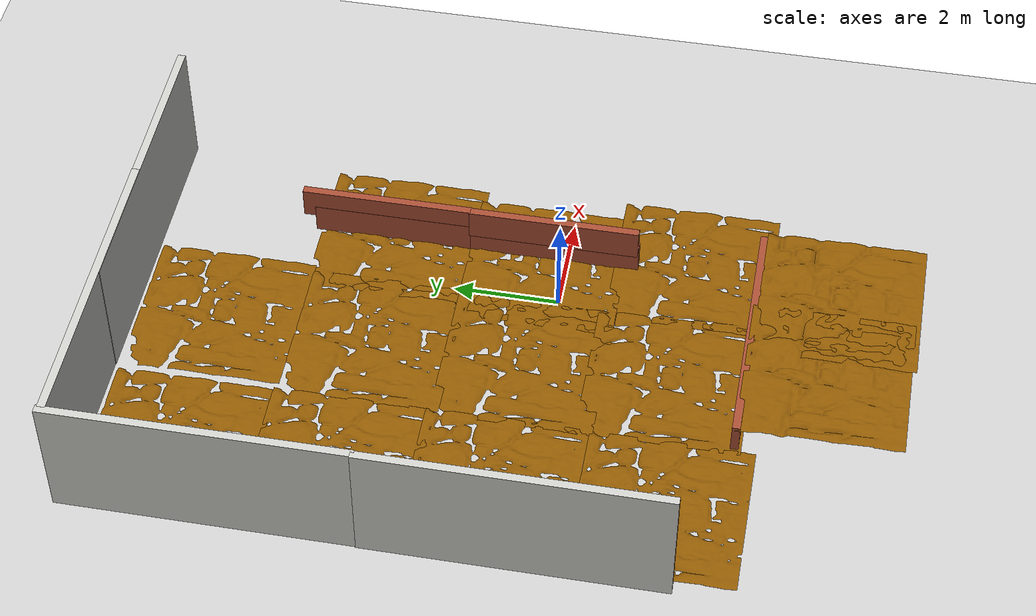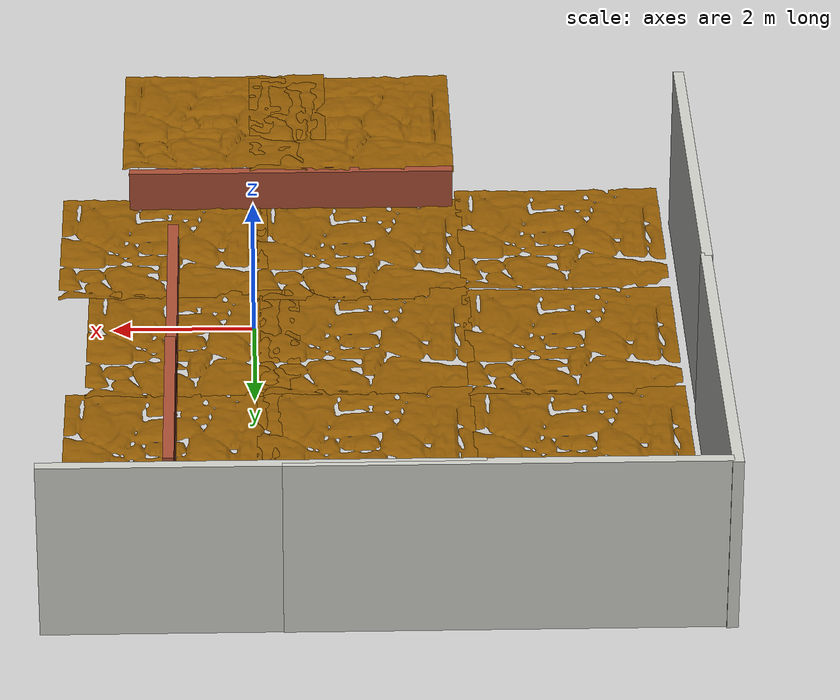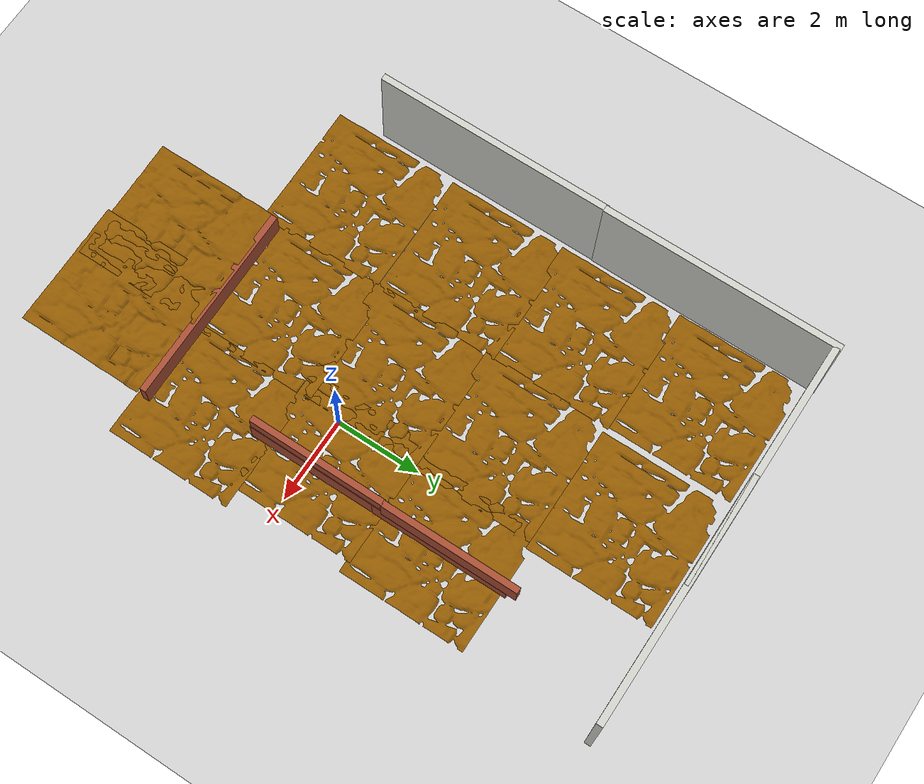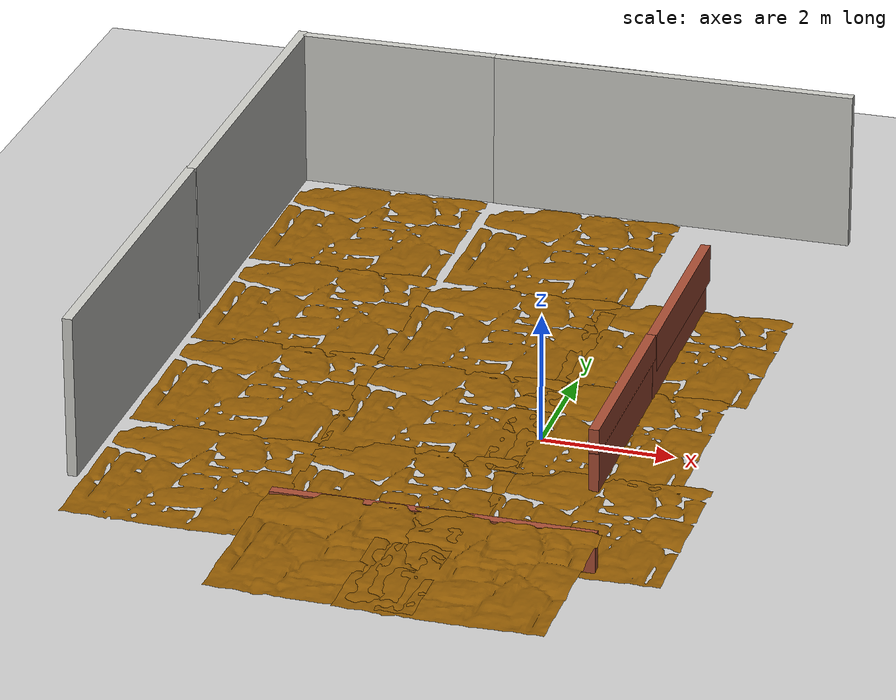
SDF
<sdf version="1.6">
 <world name="default">
  <model name="ground_plane">
   <static>1</static>
   <link name="link">
    <collision name="collision">
     <geometry><plane><normal>0 0 1</normal><size>100 100</size></plane></geometry>
     <surface>
      <contact><collide_bitmask>65535</collide_bitmask></contact>
      <friction><ode><mu>100</mu><mu2>50</mu2></ode></friction>
     </surface>
    </collision>
    <visual name="visual">
     <cast_shadows>0</cast_shadows>
     <geometry><plane><normal>0 0 1</normal><size>100 100</size></plane></geometry>
     <material>
      <script><uri>file://media/materials/scripts/gazebo.material</uri><name>Gazebo/Grey</name></script>
     </material>
    </visual>
   </link>
  </model>
  <model name="pared_corta_ladrillo">
   <pose>1.1558 0.273861 0 0 -0 0</pose>
   <link name="Wall_13">
    <collision name="Wall_13_Collision">
     <geometry><box><size>3.25 0.15 0.6</size></box></geometry>
     <pose>0 0 0.3 0 -0 0</pose>
    </collision>
    <visual name="Wall_13_Visual">
     <pose>0 0 0.3 0 -0 0</pose>
     <geometry><box><size>3.25 0.15 0.6</size></box></geometry>
     <material>
      <script><uri>file://media/materials/scripts/gazebo.material</uri><name>Gazebo/Bricks</name></script>
      <ambient>0.996078 0.47451 0.0196078 1</ambient>
     </material>
     <meta><layer>0</layer></meta>
    </visual>
    <pose>0 -0 0 0 -0 1.5708</pose>
   </link>
   <static>1</static>
  </model>
  <model name="pared_corta_ladrillo_0">
   <pose>1.15661 3.29537 0 0 -0 0</pose>
   <link name="Wall_13">
    <collision name="Wall_13_Collision">
     <geometry><box><size>3.25 0.15 0.6</size></box></geometry>
     <pose>0 0 0.3 0 -0 0</pose>
    </collision>
    <visual name="Wall_13_Visual">
     <pose>0 0 0.3 0 -0 0</pose>
     <geometry><box><size>3.25 0.15 0.6</size></box></geometry>
     <material>
      <script><uri>file://media/materials/scripts/gazebo.material</uri><name>Gazebo/Bricks</name></script>
      <ambient>0.996078 0.47451 0.0196078 1</ambient>
     </material>
     <meta><layer>0</layer></meta>
    </visual>
    <pose>0 -0 0 0 -0 1.5708</pose>
   </link>
   <static>1</static>
  </model>
  <model name="pared_1">
   <pose>-6.14189 5.20533 0 0 -0 0</pose>
   <link name="Wall_21">
    <collision name="Wall_21_Collision">
     <geometry><box><size>5.5 0.15 2.5</size></box></geometry>
     <pose>0 0 1.25 0 -0 0</pose>
    </collision>
    <visual name="Wall_21_Visual">
     <pose>0 0 1.25 0 -0 0</pose>
     <geometry><box><size>5.5 0.15 2.5</size></box></geometry>
     <material>
      <script><uri>file://media/materials/scripts/gazebo.material</uri><name>Gazebo/CeilingTiled</name></script>
      <ambient>1 1 1 1</ambient>
     </material>
     <meta><layer>0</layer></meta>
    </visual>
    <pose>0 0 0 0 -0 -1.5708</pose>
   </link>
   <static>1</static>
  </model>
  <model name="pared_1_0">
   <pose>-6.15747 -0.225974 -0 0 -0 0</pose>
   <link name="Wall_21">
    <collision name="Wall_21_Collision">
     <geometry><box><size>5.5 0.15 2.5</size></box></geometry>
     <pose>0 0 1.25 0 -0 0</pose>
    </collision>
    <visual name="Wall_21_Visual">
     <pose>0 0 1.25 0 -0 0</pose>
     <geometry><box><size>5.5 0.15 2.5</size></box></geometry>
     <material>
      <script><uri>file://media/materials/scripts/gazebo.material</uri><name>Gazebo/CeilingTiled</name></script>
      <ambient>1 1 1 1</ambient>
     </material>
     <meta><layer>0</layer></meta>
    </visual>
    <pose>0 0 0 0 -0 -1.5708</pose>
   </link>
   <static>1</static>
  </model>
  <model name="pared_2">
   <pose>-0.074522 7.8419 0 0 -0 0</pose>
   <link name="Wall_24">
    <collision name="Wall_24_Collision">
     <geometry><box><size>5.75 0.15 2.5</size></box></geometry>
     <pose>0 0 1.25 0 -0 0</pose>
    </collision>
    <visual name="Wall_24_Visual">
     <pose>0 0 1.25 0 -0 0</pose>
     <geometry><box><size>5.75 0.15 2.5</size></box></geometry>
     <material>
      <script><uri>file://media/materials/scripts/gazebo.material</uri><name>Gazebo/CeilingTiled</name></script>
      <ambient>1 1 1 1</ambient>
     </material>
     <meta><layer>0</layer></meta>
    </visual>
   </link>
   <static>1</static>
  </model>
  <model name="suelo_1">
   <link name="link_0">
    <inertial>
     <mass>1</mass>
     <inertia>
      <ixx>0.166667</ixx>
      <ixy>0</ixy>
      <ixz>0</ixz>
      <iyy>0.166667</iyy>
      <iyz>0</iyz>
      <izz>0.166667</izz>
     </inertia>
    </inertial>
    <pose>-2e-06 0 0 0 -0 0</pose>
    <gravity>0</gravity>
    <visual name="visual">
     <pose>0 0 0 1.57 -0 0</pose>
     <geometry>
      <mesh>
       <uri>/home/christyan/catkin_sureveg/src/explorador_2/worlds/Plantas/roca2.stl</uri>
       <scale>0.005 0.003 0.005</scale>
      </mesh>
     </geometry>
     <material>
      <lighting>1</lighting>
      <script><uri>file://media/materials/scripts/gazebo.material</uri><name>Gazebo/Grey</name></script>
      <shader type="vertex"><normal_map>__default__</normal_map></shader>
      <ambient>0.561 0.349 0.008 1</ambient>
      <diffuse>0.333 0.341 0.325 1</diffuse>
      <specular>0.561 0.349 0.008 1</specular>
      <emissive>0 0 0 1</emissive>
     </material>
    </visual>
    <collision name="collision">
     <pose>0 0 0 1.57 -0 0</pose>
     <geometry>
      <mesh>
       <uri>/home/christyan/catkin_sureveg/src/explorador_2/worlds/Plantas/roca2.stl</uri>
       <scale>0.005 0.003 0.005</scale>
      </mesh>
     </geometry>
     <surface>
      <friction>
       <ode><mu>1</mu><mu2>1</mu2><fdir1>0 0 0</fdir1><slip1>0</slip1><slip2>0</slip2></ode>
       <torsional>
        <coefficient>1</coefficient>
        <patch_radius>0</patch_radius>
        <surface_radius>0</surface_radius>
        <use_patch_radius>1</use_patch_radius>
        <ode><slip>0</slip></ode>
       </torsional>
      </friction>
      <bounce><restitution_coefficient>0</restitution_coefficient><threshold>1e+06</threshold></bounce>
      <contact>
       <collide_without_contact>1</collide_without_contact>
       <collide_without_contact_bitmask>1</collide_without_contact_bitmask>
       <collide_bitmask>1</collide_bitmask>
       <ode>
        <soft_cfm>0</soft_cfm>
        <soft_erp>0.2</soft_erp>
        <kp>1e+13</kp>
        <kd>1</kd>
        <max_vel>0.01</max_vel>
        <min_depth>0</min_depth>
       </ode>
       <bullet>
        <split_impulse>1</split_impulse>
        <split_impulse_penetration_threshold>-0.01</split_impulse_penetration_threshold>
        <soft_cfm>0</soft_cfm>
        <soft_erp>0.2</soft_erp>
        <kp>1e+13</kp>
        <kd>1</kd>
       </bullet>
      </contact>
     </surface>
    </collision>
   </link>
   <static>0</static>
   <pose>-1.38068 6.20388 0 0 -0 0</pose>
  </model>
  <model name="suelo_1_0">
   <link name="link_0">
    <inertial>
     <mass>1</mass>
     <inertia>
      <ixx>0.166667</ixx>
      <ixy>0</ixy>
      <ixz>0</ixz>
      <iyy>0.166667</iyy>
      <iyz>0</iyz>
      <izz>0.166667</izz>
     </inertia>
    </inertial>
    <pose>-2e-06 0 0 0 -0 0</pose>
    <gravity>0</gravity>
    <visual name="visual">
     <pose>0 0 0 1.57 -0 0</pose>
     <geometry>
      <mesh>
       <uri>/home/christyan/catkin_sureveg/src/explorador_2/worlds/Plantas/roca2.stl</uri>
       <scale>0.005 0.003 0.005</scale>
      </mesh>
     </geometry>
     <material>
      <lighting>1</lighting>
      <script><uri>file://media/materials/scripts/gazebo.material</uri><name>Gazebo/Grey</name></script>
      <shader type="vertex"><normal_map>__default__</normal_map></shader>
      <ambient>0.561 0.349 0.008 1</ambient>
      <diffuse>0.333 0.341 0.325 1</diffuse>
      <specular>0.561 0.349 0.008 1</specular>
      <emissive>0 0 0 1</emissive>
     </material>
    </visual>
    <collision name="collision">
     <pose>0 0 0 1.57 -0 0</pose>
     <geometry>
      <mesh>
       <uri>/home/christyan/catkin_sureveg/src/explorador_2/worlds/Plantas/roca2.stl</uri>
       <scale>0.005 0.003 0.005</scale>
      </mesh>
     </geometry>
     <surface>
      <friction>
       <ode><mu>1</mu><mu2>1</mu2><fdir1>0 0 0</fdir1><slip1>0</slip1><slip2>0</slip2></ode>
       <torsional>
        <coefficient>1</coefficient>
        <patch_radius>0</patch_radius>
        <surface_radius>0</surface_radius>
        <use_patch_radius>1</use_patch_radius>
        <ode><slip>0</slip></ode>
       </torsional>
      </friction>
      <bounce><restitution_coefficient>0</restitution_coefficient><threshold>1e+06</threshold></bounce>
      <contact>
       <collide_without_contact>1</collide_without_contact>
       <collide_without_contact_bitmask>1</collide_without_contact_bitmask>
       <collide_bitmask>1</collide_bitmask>
       <ode>
        <soft_cfm>0</soft_cfm>
        <soft_erp>0.2</soft_erp>
        <kp>1e+13</kp>
        <kd>1</kd>
        <max_vel>0.01</max_vel>
        <min_depth>0</min_depth>
       </ode>
       <bullet>
        <split_impulse>1</split_impulse>
        <split_impulse_penetration_threshold>-0.01</split_impulse_penetration_threshold>
        <soft_cfm>0</soft_cfm>
        <soft_erp>0.2</soft_erp>
        <kp>1e+13</kp>
        <kd>1</kd>
       </bullet>
      </contact>
     </surface>
    </collision>
   </link>
   <static>0</static>
   <pose>-1.5235 3.21161 0 0 -0 0</pose>
  </model>
  <model name="suelo_1_2">
   <link name="link_0">
    <inertial>
     <mass>1</mass>
     <inertia>
      <ixx>0.166667</ixx>
      <ixy>0</ixy>
      <ixz>0</ixz>
      <iyy>0.166667</iyy>
      <iyz>0</iyz>
      <izz>0.166667</izz>
     </inertia>
    </inertial>
    <pose>-2e-06 0 0 0 -0 0</pose>
    <gravity>0</gravity>
    <visual name="visual">
     <pose>0 0 0 1.57 -0 0</pose>
     <geometry>
      <mesh>
       <uri>/home/christyan/catkin_sureveg/src/explorador_2/worlds/Plantas/roca2.stl</uri>
       <scale>0.005 0.003 0.005</scale>
      </mesh>
     </geometry>
     <material>
      <lighting>1</lighting>
      <script><uri>file://media/materials/scripts/gazebo.material</uri><name>Gazebo/Grey</name></script>
      <shader type="vertex"><normal_map>__default__</normal_map></shader>
      <ambient>0.561 0.349 0.008 1</ambient>
      <diffuse>0.333 0.341 0.325 1</diffuse>
      <specular>0.561 0.349 0.008 1</specular>
      <emissive>0 0 0 1</emissive>
     </material>
    </visual>
    <collision name="collision">
     <pose>0 0 0 1.57 -0 0</pose>
     <geometry>
      <mesh>
       <uri>/home/christyan/catkin_sureveg/src/explorador_2/worlds/Plantas/roca2.stl</uri>
       <scale>0.005 0.003 0.005</scale>
      </mesh>
     </geometry>
     <surface>
      <friction>
       <ode><mu>1</mu><mu2>1</mu2><fdir1>0 0 0</fdir1><slip1>0</slip1><slip2>0</slip2></ode>
       <torsional>
        <coefficient>1</coefficient>
        <patch_radius>0</patch_radius>
        <surface_radius>0</surface_radius>
        <use_patch_radius>1</use_patch_radius>
        <ode><slip>0</slip></ode>
       </torsional>
      </friction>
      <bounce><restitution_coefficient>0</restitution_coefficient><threshold>1e+06</threshold></bounce>
      <contact>
       <collide_without_contact>1</collide_without_contact>
       <collide_without_contact_bitmask>1</collide_without_contact_bitmask>
       <collide_bitmask>1</collide_bitmask>
       <ode>
        <soft_cfm>0</soft_cfm>
        <soft_erp>0.2</soft_erp>
        <kp>1e+13</kp>
        <kd>1</kd>
        <max_vel>0.01</max_vel>
        <min_depth>0</min_depth>
       </ode>
       <bullet>
        <split_impulse>1</split_impulse>
        <split_impulse_penetration_threshold>-0.01</split_impulse_penetration_threshold>
        <soft_cfm>0</soft_cfm>
        <soft_erp>0.2</soft_erp>
        <kp>1e+13</kp>
        <kd>1</kd>
       </bullet>
      </contact>
     </surface>
    </collision>
   </link>
   <static>0</static>
   <pose>1.12817 3.30368 0 0 -0 0</pose>
  </model>
  <model name="suelo_1_3">
   <link name="link_0">
    <inertial>
     <mass>1</mass>
     <inertia>
      <ixx>0.166667</ixx>
      <ixy>0</ixy>
      <ixz>0</ixz>
      <iyy>0.166667</iyy>
      <iyz>0</iyz>
      <izz>0.166667</izz>
     </inertia>
    </inertial>
    <pose>-2e-06 0 0 0 -0 0</pose>
    <gravity>0</gravity>
    <visual name="visual">
     <pose>0 0 0 1.57 -0 0</pose>
     <geometry>
      <mesh>
       <uri>/home/christyan/catkin_sureveg/src/explorador_2/worlds/Plantas/roca2.stl</uri>
       <scale>0.005 0.003 0.005</scale>
      </mesh>
     </geometry>
     <material>
      <lighting>1</lighting>
      <script><uri>file://media/materials/scripts/gazebo.material</uri><name>Gazebo/Grey</name></script>
      <shader type="vertex"><normal_map>__default__</normal_map></shader>
      <ambient>0.561 0.349 0.008 1</ambient>
      <diffuse>0.333 0.341 0.325 1</diffuse>
      <specular>0.561 0.349 0.008 1</specular>
      <emissive>0 0 0 1</emissive>
     </material>
    </visual>
    <collision name="collision">
     <pose>0 0 0 1.57 -0 0</pose>
     <geometry>
      <mesh>
       <uri>/home/christyan/catkin_sureveg/src/explorador_2/worlds/Plantas/roca2.stl</uri>
       <scale>0.005 0.003 0.005</scale>
      </mesh>
     </geometry>
     <surface>
      <friction>
       <ode><mu>1</mu><mu2>1</mu2><fdir1>0 0 0</fdir1><slip1>0</slip1><slip2>0</slip2></ode>
       <torsional>
        <coefficient>1</coefficient>
        <patch_radius>0</patch_radius>
        <surface_radius>0</surface_radius>
        <use_patch_radius>1</use_patch_radius>
        <ode><slip>0</slip></ode>
       </torsional>
      </friction>
      <bounce><restitution_coefficient>0</restitution_coefficient><threshold>1e+06</threshold></bounce>
      <contact>
       <collide_without_contact>1</collide_without_contact>
       <collide_without_contact_bitmask>1</collide_without_contact_bitmask>
       <collide_bitmask>1</collide_bitmask>
       <ode>
        <soft_cfm>0</soft_cfm>
        <soft_erp>0.2</soft_erp>
        <kp>1e+13</kp>
        <kd>1</kd>
        <max_vel>0.01</max_vel>
        <min_depth>0</min_depth>
       </ode>
       <bullet>
        <split_impulse>1</split_impulse>
        <split_impulse_penetration_threshold>-0.01</split_impulse_penetration_threshold>
        <soft_cfm>0</soft_cfm>
        <soft_erp>0.2</soft_erp>
        <kp>1e+13</kp>
        <kd>1</kd>
       </bullet>
      </contact>
     </surface>
    </collision>
   </link>
   <static>0</static>
   <pose>-1.57932 0.383769 0 0 -0 0</pose>
  </model>
  <model name="suelo_1_4">
   <link name="link_0">
    <inertial>
     <mass>1</mass>
     <inertia>
      <ixx>0.166667</ixx>
      <ixy>0</ixy>
      <ixz>0</ixz>
      <iyy>0.166667</iyy>
      <iyz>0</iyz>
      <izz>0.166667</izz>
     </inertia>
    </inertial>
    <pose>-2e-06 0 0 0 -0 0</pose>
    <gravity>0</gravity>
    <visual name="visual">
     <pose>0 0 0 1.57 -0 0</pose>
     <geometry>
      <mesh>
       <uri>/home/christyan/catkin_sureveg/src/explorador_2/worlds/Plantas/roca2.stl</uri>
       <scale>0.005 0.003 0.005</scale>
      </mesh>
     </geometry>
     <material>
      <lighting>1</lighting>
      <script><uri>file://media/materials/scripts/gazebo.material</uri><name>Gazebo/Grey</name></script>
      <shader type="vertex"><normal_map>__default__</normal_map></shader>
      <ambient>0.561 0.349 0.008 1</ambient>
      <diffuse>0.333 0.341 0.325 1</diffuse>
      <specular>0.561 0.349 0.008 1</specular>
      <emissive>0 0 0 1</emissive>
     </material>
    </visual>
    <collision name="collision">
     <pose>0 0 0 1.57 -0 0</pose>
     <geometry>
      <mesh>
       <uri>/home/christyan/catkin_sureveg/src/explorador_2/worlds/Plantas/roca2.stl</uri>
       <scale>0.005 0.003 0.005</scale>
      </mesh>
     </geometry>
     <surface>
      <friction>
       <ode><mu>1</mu><mu2>1</mu2><fdir1>0 0 0</fdir1><slip1>0</slip1><slip2>0</slip2></ode>
       <torsional>
        <coefficient>1</coefficient>
        <patch_radius>0</patch_radius>
        <surface_radius>0</surface_radius>
        <use_patch_radius>1</use_patch_radius>
        <ode><slip>0</slip></ode>
       </torsional>
      </friction>
      <bounce><restitution_coefficient>0</restitution_coefficient><threshold>1e+06</threshold></bounce>
      <contact>
       <collide_without_contact>1</collide_without_contact>
       <collide_without_contact_bitmask>1</collide_without_contact_bitmask>
       <collide_bitmask>1</collide_bitmask>
       <ode>
        <soft_cfm>0</soft_cfm>
        <soft_erp>0.2</soft_erp>
        <kp>1e+13</kp>
        <kd>1</kd>
        <max_vel>0.01</max_vel>
        <min_depth>0</min_depth>
       </ode>
       <bullet>
        <split_impulse>1</split_impulse>
        <split_impulse_penetration_threshold>-0.01</split_impulse_penetration_threshold>
        <soft_cfm>0</soft_cfm>
        <soft_erp>0.2</soft_erp>
        <kp>1e+13</kp>
        <kd>1</kd>
       </bullet>
      </contact>
     </surface>
    </collision>
   </link>
   <static>0</static>
   <pose>0.861675 0.391435 0 0 -0 0</pose>
  </model>
  <model name="suelo_1_9">
   <link name="link_0">
    <inertial>
     <mass>1</mass>
     <inertia>
      <ixx>0.166667</ixx>
      <ixy>0</ixy>
      <ixz>0</ixz>
      <iyy>0.166667</iyy>
      <iyz>0</iyz>
      <izz>0.166667</izz>
     </inertia>
    </inertial>
    <pose>-2e-06 0 0 0 -0 0</pose>
    <gravity>0</gravity>
    <visual name="visual">
     <pose>0 0 0 1.57 -0 0</pose>
     <geometry>
      <mesh>
       <uri>/home/christyan/catkin_sureveg/src/explorador_2/worlds/Plantas/roca2.stl</uri>
       <scale>0.005 0.003 0.005</scale>
      </mesh>
     </geometry>
     <material>
      <lighting>1</lighting>
      <script><uri>file://media/materials/scripts/gazebo.material</uri><name>Gazebo/Grey</name></script>
      <shader type="vertex"><normal_map>__default__</normal_map></shader>
      <ambient>0.561 0.349 0.008 1</ambient>
      <diffuse>0.333 0.341 0.325 1</diffuse>
      <specular>0.561 0.349 0.008 1</specular>
      <emissive>0 0 0 1</emissive>
     </material>
    </visual>
    <collision name="collision">
     <pose>0 0 0 1.57 -0 0</pose>
     <geometry>
      <mesh>
       <uri>/home/christyan/catkin_sureveg/src/explorador_2/worlds/Plantas/roca2.stl</uri>
       <scale>0.005 0.003 0.005</scale>
      </mesh>
     </geometry>
     <surface>
      <friction>
       <ode><mu>1</mu><mu2>1</mu2><fdir1>0 0 0</fdir1><slip1>0</slip1><slip2>0</slip2></ode>
       <torsional>
        <coefficient>1</coefficient>
        <patch_radius>0</patch_radius>
        <surface_radius>0</surface_radius>
        <use_patch_radius>1</use_patch_radius>
        <ode><slip>0</slip></ode>
       </torsional>
      </friction>
      <bounce><restitution_coefficient>0</restitution_coefficient><threshold>1e+06</threshold></bounce>
      <contact>
       <collide_without_contact>1</collide_without_contact>
       <collide_without_contact_bitmask>1</collide_without_contact_bitmask>
       <collide_bitmask>1</collide_bitmask>
       <ode>
        <soft_cfm>0</soft_cfm>
        <soft_erp>0.2</soft_erp>
        <kp>1e+13</kp>
        <kd>1</kd>
        <max_vel>0.01</max_vel>
        <min_depth>0</min_depth>
       </ode>
       <bullet>
        <split_impulse>1</split_impulse>
        <split_impulse_penetration_threshold>-0.01</split_impulse_penetration_threshold>
        <soft_cfm>0</soft_cfm>
        <soft_erp>0.2</soft_erp>
        <kp>1e+13</kp>
        <kd>1</kd>
       </bullet>
      </contact>
     </surface>
    </collision>
   </link>
   <static>0</static>
   <pose>-1.55289 -2.28376 0 0 -0 0</pose>
  </model>
  <model name="suelo_1_10">
   <link name="link_0">
    <inertial>
     <mass>1</mass>
     <inertia>
      <ixx>0.166667</ixx>
      <ixy>0</ixy>
      <ixz>0</ixz>
      <iyy>0.166667</iyy>
      <iyz>0</iyz>
      <izz>0.166667</izz>
     </inertia>
    </inertial>
    <pose>-2e-06 0 0 0 -0 0</pose>
    <gravity>0</gravity>
    <visual name="visual">
     <pose>0 0 0 1.57 -0 0</pose>
     <geometry>
      <mesh>
       <uri>/home/christyan/catkin_sureveg/src/explorador_2/worlds/Plantas/roca2.stl</uri>
       <scale>0.005 0.003 0.005</scale>
      </mesh>
     </geometry>
     <material>
      <lighting>1</lighting>
      <script><uri>file://media/materials/scripts/gazebo.material</uri><name>Gazebo/Grey</name></script>
      <shader type="vertex"><normal_map>__default__</normal_map></shader>
      <ambient>0.561 0.349 0.008 1</ambient>
      <diffuse>0.333 0.341 0.325 1</diffuse>
      <specular>0.561 0.349 0.008 1</specular>
      <emissive>0 0 0 1</emissive>
     </material>
    </visual>
    <collision name="collision">
     <pose>0 0 0 1.57 -0 0</pose>
     <geometry>
      <mesh>
       <uri>/home/christyan/catkin_sureveg/src/explorador_2/worlds/Plantas/roca2.stl</uri>
       <scale>0.005 0.003 0.005</scale>
      </mesh>
     </geometry>
     <surface>
      <friction>
       <ode><mu>1</mu><mu2>1</mu2><fdir1>0 0 0</fdir1><slip1>0</slip1><slip2>0</slip2></ode>
       <torsional>
        <coefficient>1</coefficient>
        <patch_radius>0</patch_radius>
        <surface_radius>0</surface_radius>
        <use_patch_radius>1</use_patch_radius>
        <ode><slip>0</slip></ode>
       </torsional>
      </friction>
      <bounce><restitution_coefficient>0</restitution_coefficient><threshold>1e+06</threshold></bounce>
      <contact>
       <collide_without_contact>1</collide_without_contact>
       <collide_without_contact_bitmask>1</collide_without_contact_bitmask>
       <collide_bitmask>1</collide_bitmask>
       <ode>
        <soft_cfm>0</soft_cfm>
        <soft_erp>0.2</soft_erp>
        <kp>1e+13</kp>
        <kd>1</kd>
        <max_vel>0.01</max_vel>
        <min_depth>0</min_depth>
       </ode>
       <bullet>
        <split_impulse>1</split_impulse>
        <split_impulse_penetration_threshold>-0.01</split_impulse_penetration_threshold>
        <soft_cfm>0</soft_cfm>
        <soft_erp>0.2</soft_erp>
        <kp>1e+13</kp>
        <kd>1</kd>
       </bullet>
      </contact>
     </surface>
    </collision>
   </link>
   <static>0</static>
   <pose>1.30046 -2.39811 0 0 -0 0</pose>
  </model>
  <model name="suelo_alto_3">
   <link name="link_0">
    <inertial>
     <mass>1</mass>
     <inertia>
      <ixx>0.166667</ixx>
      <ixy>0</ixy>
      <ixz>0</ixz>
      <iyy>0.166667</iyy>
      <iyz>0</iyz>
      <izz>0.166667</izz>
     </inertia>
    </inertial>
    <pose>-2e-06 0 0 0 -0 0</pose>
    <gravity>0</gravity>
    <visual name="visual">
     <pose>0 0 0.6 1.57 -0 0</pose>
     <geometry>
      <mesh>
       <uri>/home/christyan/catkin_sureveg/src/explorador_2/worlds/Plantas/roca2.stl</uri>
       <scale>0.005 0.003 0.005</scale>
      </mesh>
     </geometry>
     <material>
      <lighting>1</lighting>
      <script><uri>file://media/materials/scripts/gazebo.material</uri><name>Gazebo/Grey</name></script>
      <shader type="vertex"><normal_map>__default__</normal_map></shader>
      <ambient>0.561 0.349 0.008 1</ambient>
      <diffuse>0.333 0.341 0.325 1</diffuse>
      <specular>0.561 0.349 0.008 1</specular>
      <emissive>0 0 0 1</emissive>
     </material>
    </visual>
    <collision name="collision">
     <pose>0 0 0.6 1.57 -0 0</pose>
     <geometry>
      <mesh>
       <uri>/home/christyan/catkin_sureveg/src/explorador_2/worlds/Plantas/roca2.stl</uri>
       <scale>0.005 0.003 0.005</scale>
      </mesh>
     </geometry>
     <surface>
      <friction>
       <ode><mu>1</mu><mu2>1</mu2><fdir1>0 0 0</fdir1><slip1>0</slip1><slip2>0</slip2></ode>
       <torsional>
        <coefficient>1</coefficient>
        <patch_radius>0</patch_radius>
        <surface_radius>0</surface_radius>
        <use_patch_radius>1</use_patch_radius>
        <ode><slip>0</slip></ode>
       </torsional>
      </friction>
      <bounce><restitution_coefficient>0</restitution_coefficient><threshold>1e+06</threshold></bounce>
      <contact>
       <collide_without_contact>1</collide_without_contact>
       <collide_without_contact_bitmask>1</collide_without_contact_bitmask>
       <collide_bitmask>1</collide_bitmask>
       <ode>
        <soft_cfm>0</soft_cfm>
        <soft_erp>0.2</soft_erp>
        <kp>1e+13</kp>
        <kd>1</kd>
        <max_vel>0.01</max_vel>
        <min_depth>0</min_depth>
       </ode>
       <bullet>
        <split_impulse>1</split_impulse>
        <split_impulse_penetration_threshold>-0.01</split_impulse_penetration_threshold>
        <soft_cfm>0</soft_cfm>
        <soft_erp>0.2</soft_erp>
        <kp>1e+13</kp>
        <kd>1</kd>
       </bullet>
      </contact>
     </surface>
    </collision>
   </link>
   <static>0</static>
   <pose>-1.44918 -5.13652 0 0 -0 0</pose>
  </model>
  <model name="pared_corta_lad_2_1">
   <pose>-0.555089 -3.65728 0 0 -0 0</pose>
   <link name="Wall_19">
    <collision name="Wall_19_Collision">
     <geometry><box><size>4.75 0.15 0.6</size></box></geometry>
     <pose>0 0 0.3 0 -0 0</pose>
    </collision>
    <visual name="Wall_19_Visual">
     <pose>0 0 0.3 0 -0 0</pose>
     <geometry><box><size>4.75 0.15 0.6</size></box></geometry>
     <material>
      <script><uri>file://media/materials/scripts/gazebo.material</uri><name>Gazebo/Bricks</name></script>
      <ambient>1 1 1 1</ambient>
     </material>
     <meta><layer>0</layer></meta>
    </visual>
   </link>
   <static>1</static>
  </model>
  <model name="suelo_alto_5">
   <link name="link_0">
    <inertial>
     <mass>1</mass>
     <inertia>
      <ixx>0.166667</ixx>
      <ixy>0</ixy>
      <ixz>0</ixz>
      <iyy>0.166667</iyy>
      <iyz>0</iyz>
      <izz>0.166667</izz>
     </inertia>
    </inertial>
    <pose>-2e-06 0 0 0 -0 0</pose>
    <gravity>0</gravity>
    <visual name="visual">
     <pose>0 0 0.6 1.57 -0 0</pose>
     <geometry>
      <mesh>
       <uri>/home/christyan/catkin_sureveg/src/explorador_2/worlds/Plantas/roca2.stl</uri>
       <scale>0.005 0.003 0.005</scale>
      </mesh>
     </geometry>
     <material>
      <lighting>1</lighting>
      <script><uri>file://media/materials/scripts/gazebo.material</uri><name>Gazebo/Grey</name></script>
      <shader type="vertex"><normal_map>__default__</normal_map></shader>
      <ambient>0.561 0.349 0.008 1</ambient>
      <diffuse>0.333 0.341 0.325 1</diffuse>
      <specular>0.561 0.349 0.008 1</specular>
      <emissive>0 0 0 1</emissive>
     </material>
    </visual>
    <collision name="collision">
     <pose>0 0 0.6 1.57 -0 0</pose>
     <geometry>
      <mesh>
       <uri>/home/christyan/catkin_sureveg/src/explorador_2/worlds/Plantas/roca2.stl</uri>
       <scale>0.005 0.003 0.005</scale>
      </mesh>
     </geometry>
     <surface>
      <friction>
       <ode><mu>1</mu><mu2>1</mu2><fdir1>0 0 0</fdir1><slip1>0</slip1><slip2>0</slip2></ode>
       <torsional>
        <coefficient>1</coefficient>
        <patch_radius>0</patch_radius>
        <surface_radius>0</surface_radius>
        <use_patch_radius>1</use_patch_radius>
        <ode><slip>0</slip></ode>
       </torsional>
      </friction>
      <bounce><restitution_coefficient>0</restitution_coefficient><threshold>1e+06</threshold></bounce>
      <contact>
       <collide_without_contact>1</collide_without_contact>
       <collide_without_contact_bitmask>1</collide_without_contact_bitmask>
       <collide_bitmask>1</collide_bitmask>
       <ode>
        <soft_cfm>0</soft_cfm>
        <soft_erp>0.2</soft_erp>
        <kp>1e+13</kp>
        <kd>1</kd>
        <max_vel>0.01</max_vel>
        <min_depth>0</min_depth>
       </ode>
       <bullet>
        <split_impulse>1</split_impulse>
        <split_impulse_penetration_threshold>-0.01</split_impulse_penetration_threshold>
        <soft_cfm>0</soft_cfm>
        <soft_erp>0.2</soft_erp>
        <kp>1e+13</kp>
        <kd>1</kd>
       </bullet>
      </contact>
     </surface>
    </collision>
   </link>
   <static>0</static>
   <pose>0.415874 -5.21643 0 0 -0 0</pose>
  </model>
  <model name="pared_2_3">
   <pose>-3.21963 7.8514 0 0 -0 0</pose>
   <link name="Wall_24">
    <collision name="Wall_24_Collision">
     <geometry><box><size>5.75 0.15 2.5</size></box></geometry>
     <pose>0 0 1.25 0 -0 0</pose>
    </collision>
    <visual name="Wall_24_Visual">
     <pose>0 0 1.25 0 -0 0</pose>
     <geometry><box><size>5.75 0.15 2.5</size></box></geometry>
     <material>
      <script><uri>file://media/materials/scripts/gazebo.material</uri><name>Gazebo/CeilingTiled</name></script>
      <ambient>1 1 1 1</ambient>
     </material>
     <meta><layer>0</layer></meta>
    </visual>
   </link>
   <static>1</static>
  </model>
  <model name="suelo_1_17">
   <link name="link_0">
    <inertial>
     <mass>1</mass>
     <inertia>
      <ixx>0.166667</ixx>
      <ixy>0</ixy>
      <ixz>0</ixz>
      <iyy>0.166667</iyy>
      <iyz>0</iyz>
      <izz>0.166667</izz>
     </inertia>
    </inertial>
    <pose>-2e-06 0 0 0 -0 0</pose>
    <gravity>0</gravity>
    <visual name="visual">
     <pose>0 0 0 1.57 -0 0</pose>
     <geometry>
      <mesh>
       <uri>/home/christyan/catkin_sureveg/src/explorador_2/worlds/Plantas/roca2.stl</uri>
       <scale>0.005 0.003 0.005</scale>
      </mesh>
     </geometry>
     <material>
      <lighting>1</lighting>
      <script><uri>file://media/materials/scripts/gazebo.material</uri><name>Gazebo/Grey</name></script>
      <shader type="vertex"><normal_map>__default__</normal_map></shader>
      <ambient>0.561 0.349 0.008 1</ambient>
      <diffuse>0.333 0.341 0.325 1</diffuse>
      <specular>0.561 0.349 0.008 1</specular>
      <emissive>0 0 0 1</emissive>
     </material>
    </visual>
    <collision name="collision">
     <pose>0 0 0 1.57 -0 0</pose>
     <geometry>
      <mesh>
       <uri>/home/christyan/catkin_sureveg/src/explorador_2/worlds/Plantas/roca2.stl</uri>
       <scale>0.005 0.003 0.005</scale>
      </mesh>
     </geometry>
     <surface>
      <friction>
       <ode><mu>1</mu><mu2>1</mu2><fdir1>0 0 0</fdir1><slip1>0</slip1><slip2>0</slip2></ode>
       <torsional>
        <coefficient>1</coefficient>
        <patch_radius>0</patch_radius>
        <surface_radius>0</surface_radius>
        <use_patch_radius>1</use_patch_radius>
        <ode><slip>0</slip></ode>
       </torsional>
      </friction>
      <bounce><restitution_coefficient>0</restitution_coefficient><threshold>1e+06</threshold></bounce>
      <contact>
       <collide_without_contact>1</collide_without_contact>
       <collide_without_contact_bitmask>1</collide_without_contact_bitmask>
       <collide_bitmask>1</collide_bitmask>
       <ode>
        <soft_cfm>0</soft_cfm>
        <soft_erp>0.2</soft_erp>
        <kp>1e+13</kp>
        <kd>1</kd>
        <max_vel>0.01</max_vel>
        <min_depth>0</min_depth>
       </ode>
       <bullet>
        <split_impulse>1</split_impulse>
        <split_impulse_penetration_threshold>-0.01</split_impulse_penetration_threshold>
        <soft_cfm>0</soft_cfm>
        <soft_erp>0.2</soft_erp>
        <kp>1e+13</kp>
        <kd>1</kd>
       </bullet>
      </contact>
     </surface>
    </collision>
   </link>
   <static>0</static>
   <pose>-4.52789 6.19911 0 0 -0 0</pose>
  </model>
  <model name="suelo_1_18">
   <link name="link_0">
    <inertial>
     <mass>1</mass>
     <inertia>
      <ixx>0.166667</ixx>
      <ixy>0</ixy>
      <ixz>0</ixz>
      <iyy>0.166667</iyy>
      <iyz>0</iyz>
      <izz>0.166667</izz>
     </inertia>
    </inertial>
    <pose>-2e-06 0 0 0 -0 0</pose>
    <gravity>0</gravity>
    <visual name="visual">
     <pose>0 0 0 1.57 -0 0</pose>
     <geometry>
      <mesh>
       <uri>/home/christyan/catkin_sureveg/src/explorador_2/worlds/Plantas/roca2.stl</uri>
       <scale>0.005 0.003 0.005</scale>
      </mesh>
     </geometry>
     <material>
      <lighting>1</lighting>
      <script><uri>file://media/materials/scripts/gazebo.material</uri><name>Gazebo/Grey</name></script>
      <shader type="vertex"><normal_map>__default__</normal_map></shader>
      <ambient>0.561 0.349 0.008 1</ambient>
      <diffuse>0.333 0.341 0.325 1</diffuse>
      <specular>0.561 0.349 0.008 1</specular>
      <emissive>0 0 0 1</emissive>
     </material>
    </visual>
    <collision name="collision">
     <pose>0 0 0 1.57 -0 0</pose>
     <geometry>
      <mesh>
       <uri>/home/christyan/catkin_sureveg/src/explorador_2/worlds/Plantas/roca2.stl</uri>
       <scale>0.005 0.003 0.005</scale>
      </mesh>
     </geometry>
     <surface>
      <friction>
       <ode><mu>1</mu><mu2>1</mu2><fdir1>0 0 0</fdir1><slip1>0</slip1><slip2>0</slip2></ode>
       <torsional>
        <coefficient>1</coefficient>
        <patch_radius>0</patch_radius>
        <surface_radius>0</surface_radius>
        <use_patch_radius>1</use_patch_radius>
        <ode><slip>0</slip></ode>
       </torsional>
      </friction>
      <bounce><restitution_coefficient>0</restitution_coefficient><threshold>1e+06</threshold></bounce>
      <contact>
       <collide_without_contact>1</collide_without_contact>
       <collide_without_contact_bitmask>1</collide_without_contact_bitmask>
       <collide_bitmask>1</collide_bitmask>
       <ode>
        <soft_cfm>0</soft_cfm>
        <soft_erp>0.2</soft_erp>
        <kp>1e+13</kp>
        <kd>1</kd>
        <max_vel>0.01</max_vel>
        <min_depth>0</min_depth>
       </ode>
       <bullet>
        <split_impulse>1</split_impulse>
        <split_impulse_penetration_threshold>-0.01</split_impulse_penetration_threshold>
        <soft_cfm>0</soft_cfm>
        <soft_erp>0.2</soft_erp>
        <kp>1e+13</kp>
        <kd>1</kd>
       </bullet>
      </contact>
     </surface>
    </collision>
   </link>
   <static>0</static>
   <pose>-4.48084 3.27148 0 0 -0 0</pose>
  </model>
  <model name="suelo_1_19">
   <link name="link_0">
    <inertial>
     <mass>1</mass>
     <inertia>
      <ixx>0.166667</ixx>
      <ixy>0</ixy>
      <ixz>0</ixz>
      <iyy>0.166667</iyy>
      <iyz>0</iyz>
      <izz>0.166667</izz>
     </inertia>
    </inertial>
    <pose>-2e-06 0 0 0 -0 0</pose>
    <gravity>0</gravity>
    <visual name="visual">
     <pose>0 0 0 1.57 -0 0</pose>
     <geometry>
      <mesh>
       <uri>/home/christyan/catkin_sureveg/src/explorador_2/worlds/Plantas/roca2.stl</uri>
       <scale>0.005 0.003 0.005</scale>
      </mesh>
     </geometry>
     <material>
      <lighting>1</lighting>
      <script><uri>file://media/materials/scripts/gazebo.material</uri><name>Gazebo/Grey</name></script>
      <shader type="vertex"><normal_map>__default__</normal_map></shader>
      <ambient>0.561 0.349 0.008 1</ambient>
      <diffuse>0.333 0.341 0.325 1</diffuse>
      <specular>0.561 0.349 0.008 1</specular>
      <emissive>0 0 0 1</emissive>
     </material>
    </visual>
    <collision name="collision">
     <pose>0 0 0 1.57 -0 0</pose>
     <geometry>
      <mesh>
       <uri>/home/christyan/catkin_sureveg/src/explorador_2/worlds/Plantas/roca2.stl</uri>
       <scale>0.005 0.003 0.005</scale>
      </mesh>
     </geometry>
     <surface>
      <friction>
       <ode><mu>1</mu><mu2>1</mu2><fdir1>0 0 0</fdir1><slip1>0</slip1><slip2>0</slip2></ode>
       <torsional>
        <coefficient>1</coefficient>
        <patch_radius>0</patch_radius>
        <surface_radius>0</surface_radius>
        <use_patch_radius>1</use_patch_radius>
        <ode><slip>0</slip></ode>
       </torsional>
      </friction>
      <bounce><restitution_coefficient>0</restitution_coefficient><threshold>1e+06</threshold></bounce>
      <contact>
       <collide_without_contact>1</collide_without_contact>
       <collide_without_contact_bitmask>1</collide_without_contact_bitmask>
       <collide_bitmask>1</collide_bitmask>
       <ode>
        <soft_cfm>0</soft_cfm>
        <soft_erp>0.2</soft_erp>
        <kp>1e+13</kp>
        <kd>1</kd>
        <max_vel>0.01</max_vel>
        <min_depth>0</min_depth>
       </ode>
       <bullet>
        <split_impulse>1</split_impulse>
        <split_impulse_penetration_threshold>-0.01</split_impulse_penetration_threshold>
        <soft_cfm>0</soft_cfm>
        <soft_erp>0.2</soft_erp>
        <kp>1e+13</kp>
        <kd>1</kd>
       </bullet>
      </contact>
     </surface>
    </collision>
   </link>
   <static>0</static>
   <pose>-4.4662 0.442381 0 0 -0 0</pose>
  </model>
  <model name="suelo_1_20">
   <link name="link_0">
    <inertial>
     <mass>1</mass>
     <inertia>
      <ixx>0.166667</ixx>
      <ixy>0</ixy>
      <ixz>0</ixz>
      <iyy>0.166667</iyy>
      <iyz>0</iyz>
      <izz>0.166667</izz>
     </inertia>
    </inertial>
    <pose>-2e-06 0 0 0 -0 0</pose>
    <gravity>0</gravity>
    <visual name="visual">
     <pose>0 0 0 1.57 -0 0</pose>
     <geometry>
      <mesh>
       <uri>/home/christyan/catkin_sureveg/src/explorador_2/worlds/Plantas/roca2.stl</uri>
       <scale>0.005 0.003 0.005</scale>
      </mesh>
     </geometry>
     <material>
      <lighting>1</lighting>
      <script><uri>file://media/materials/scripts/gazebo.material</uri><name>Gazebo/Grey</name></script>
      <shader type="vertex"><normal_map>__default__</normal_map></shader>
      <ambient>0.561 0.349 0.008 1</ambient>
      <diffuse>0.333 0.341 0.325 1</diffuse>
      <specular>0.561 0.349 0.008 1</specular>
      <emissive>0 0 0 1</emissive>
     </material>
    </visual>
    <collision name="collision">
     <pose>0 0 0 1.57 -0 0</pose>
     <geometry>
      <mesh>
       <uri>/home/christyan/catkin_sureveg/src/explorador_2/worlds/Plantas/roca2.stl</uri>
       <scale>0.005 0.003 0.005</scale>
      </mesh>
     </geometry>
     <surface>
      <friction>
       <ode><mu>1</mu><mu2>1</mu2><fdir1>0 0 0</fdir1><slip1>0</slip1><slip2>0</slip2></ode>
       <torsional>
        <coefficient>1</coefficient>
        <patch_radius>0</patch_radius>
        <surface_radius>0</surface_radius>
        <use_patch_radius>1</use_patch_radius>
        <ode><slip>0</slip></ode>
       </torsional>
      </friction>
      <bounce><restitution_coefficient>0</restitution_coefficient><threshold>1e+06</threshold></bounce>
      <contact>
       <collide_without_contact>1</collide_without_contact>
       <collide_without_contact_bitmask>1</collide_without_contact_bitmask>
       <collide_bitmask>1</collide_bitmask>
       <ode>
        <soft_cfm>0</soft_cfm>
        <soft_erp>0.2</soft_erp>
        <kp>1e+13</kp>
        <kd>1</kd>
        <max_vel>0.01</max_vel>
        <min_depth>0</min_depth>
       </ode>
       <bullet>
        <split_impulse>1</split_impulse>
        <split_impulse_penetration_threshold>-0.01</split_impulse_penetration_threshold>
        <soft_cfm>0</soft_cfm>
        <soft_erp>0.2</soft_erp>
        <kp>1e+13</kp>
        <kd>1</kd>
       </bullet>
      </contact>
     </surface>
    </collision>
   </link>
   <static>0</static>
   <pose>-4.47286 -2.56006 0 0 -0 0</pose>
  </model>
  <model name="pared_corta_ladrillo_clone">
   <pose>1.14507 0.293568 0.375045 0 -0 0</pose>
   <link name="Wall_13">
    <collision name="Wall_13_Collision">
     <geometry><box><size>3.25 0.15 0.6</size></box></geometry>
     <pose>0 0 0.3 0 -0 0</pose>
    </collision>
    <visual name="Wall_13_Visual">
     <pose>0 0 0.3 0 -0 0</pose>
     <geometry><box><size>3.25 0.15 0.6</size></box></geometry>
     <material>
      <script><uri>file://media/materials/scripts/gazebo.material</uri><name>Gazebo/Bricks</name></script>
      <ambient>0.996078 0.47451 0.0196078 1</ambient>
     </material>
     <meta><layer>0</layer></meta>
    </visual>
    <pose>0 -0 0 0 -0 1.5708</pose>
   </link>
   <static>1</static>
  </model>
  <model name="pared_corta_ladrillo_clone_clone">
   <pose>1.1584 3.51943 0.375045 0 -0 0</pose>
   <link name="Wall_13">
    <collision name="Wall_13_Collision">
     <geometry><box><size>3.25 0.15 0.6</size></box></geometry>
     <pose>0 0 0.3 0 -0 0</pose>
    </collision>
    <visual name="Wall_13_Visual">
     <pose>0 0 0.3 0 -0 0</pose>
     <geometry><box><size>3.25 0.15 0.6</size></box></geometry>
     <material>
      <script><uri>file://media/materials/scripts/gazebo.material</uri><name>Gazebo/Bricks</name></script>
      <ambient>0.996078 0.47451 0.0196078 1</ambient>
     </material>
     <meta><layer>0</layer></meta>
    </visual>
    <pose>0 -0 0 0 -0 1.5708</pose>
   </link>
   <static>1</static>
  </model>
 </world>
</sdf>
